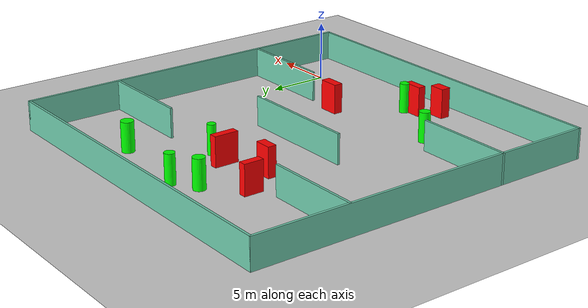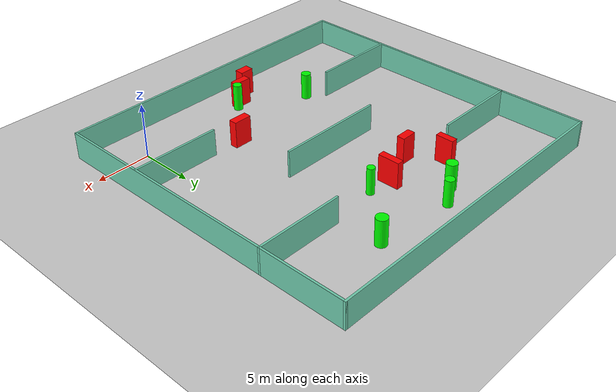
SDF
<sdf version="1.7">
 <world name="default">
  <light name="sun" type="directional">
   <pose>0 0 10 0 -0 0</pose>
   <diffuse>0.8 0.8 0.8 1</diffuse>
   <specular>0.2 0.2 0.2 1</specular>
   <attenuation>
    <range>1000</range>
    <constant>0.9</constant>
    <linear>0.01</linear>
    <quadratic>0.001</quadratic>
   </attenuation>
   <direction>-0.5 0.1 -0.9</direction>
   <spot><inner_angle>0</inner_angle><outer_angle>0</outer_angle><falloff>0</falloff></spot>
  </light>
  <model name="ground_plane">
   <static>1</static>
   <link name="link">
    <collision name="collision">
     <geometry><plane><normal>0 0 1</normal><size>100 100</size></plane></geometry>
     <surface>
      <contact><collide_bitmask>65535</collide_bitmask></contact>
      <friction><ode><mu>100</mu><mu2>50</mu2></ode></friction>
     </surface>
    </collision>
    <visual name="visual">
     <cast_shadows>0</cast_shadows>
     <geometry><plane><normal>0 0 1</normal><size>100 100</size></plane></geometry>
     <material>
      <script><uri>file://media/materials/scripts/gazebo.material</uri><name>Gazebo/Grey</name></script>
     </material>
    </visual>
   </link>
  </model>
  <gravity>0 0 -9.8</gravity>
  <magnetic_field>6e-06 2.3e-05 -4.2e-05</magnetic_field>
  <atmosphere type="adiabatic"/>
  <physics type="ode">
   <max_step_size>0.001</max_step_size>
   <real_time_factor>1</real_time_factor>
   <real_time_update_rate>1000</real_time_update_rate>
  </physics>
  <scene><ambient>0.4 0.4 0.4 1</ambient><background>0.7 0.7 0.7 1</background><shadows>1</shadows></scene>
  <spherical_coordinates>
   <surface_model>EARTH_WGS84</surface_model>
   <latitude_deg>0</latitude_deg>
   <longitude_deg>0</longitude_deg>
   <elevation>0</elevation>
   <heading_deg>0</heading_deg>
  </spherical_coordinates>
  <model name="my_base_walls">
   <link name="Wall_10">
    <collision name="Wall_10_Collision">
     <geometry><box><size>8.2 0.2 2.5</size></box></geometry>
     <pose>0 0 1.25 0 -0 0</pose>
    </collision>
    <visual name="Wall_10_Visual">
     <pose>0 0 1.25 0 -0 0</pose>
     <geometry><box><size>8.2 0.2 2.5</size></box></geometry>
     <material>
      <script><uri>file://media/materials/scripts/gazebo.material</uri><name>Gazebo/Grey</name></script>
      <ambient>0.435294 0.796078 0.67451 1</ambient>
     </material>
     <meta><layer>0</layer></meta>
    </visual>
    <pose>-11 -7 0 0 -0 0</pose>
   </link>
   <link name="Wall_12">
    <collision name="Wall_12_Collision">
     <geometry><box><size>8.2 0.2 2.5</size></box></geometry>
     <pose>0 0 1.25 0 -0 0</pose>
    </collision>
    <visual name="Wall_12_Visual">
     <pose>0 0 1.25 0 -0 0</pose>
     <geometry><box><size>8.2 0.2 2.5</size></box></geometry>
     <material>
      <script><uri>file://media/materials/scripts/gazebo.material</uri><name>Gazebo/Grey</name></script>
      <ambient>0.435294 0.796078 0.67451 1</ambient>
     </material>
     <meta><layer>0</layer></meta>
    </visual>
    <pose>-11 7 0 0 -0 0</pose>
   </link>
   <link name="Wall_14">
    <collision name="Wall_14_Collision">
     <geometry><box><size>8.2 0.2 2.5</size></box></geometry>
     <pose>0 0 1.25 0 -0 0</pose>
    </collision>
    <visual name="Wall_14_Visual">
     <pose>0 0 1.25 0 -0 0</pose>
     <geometry><box><size>8.2 0.2 2.5</size></box></geometry>
     <material>
      <script><uri>file://media/materials/scripts/gazebo.material</uri><name>Gazebo/Grey</name></script>
      <ambient>0.435294 0.796078 0.67451 1</ambient>
     </material>
     <meta><layer>0</layer></meta>
    </visual>
    <pose>11 7 0 0 -0 3.14159</pose>
   </link>
   <link name="Wall_16">
    <collision name="Wall_16_Collision">
     <geometry><box><size>10.2 0.2 2.5</size></box></geometry>
     <pose>0 0 1.25 0 -0 0</pose>
    </collision>
    <visual name="Wall_16_Visual">
     <pose>0 0 1.25 0 -0 0</pose>
     <geometry><box><size>10.2 0.2 2.5</size></box></geometry>
     <material>
      <script><uri>file://media/materials/scripts/gazebo.material</uri><name>Gazebo/Grey</name></script>
      <ambient>0.435294 0.796078 0.67451 1</ambient>
     </material>
     <meta><layer>0</layer></meta>
    </visual>
    <pose>0 0 0 0 -0 3.14159</pose>
   </link>
   <link name="Wall_2">
    <collision name="Wall_2_Collision">
     <geometry><box><size>30.2 0.2 2.5</size></box></geometry>
     <pose>0 0 1.25 0 -0 0</pose>
    </collision>
    <visual name="Wall_2_Visual">
     <pose>0 0 1.25 0 -0 0</pose>
     <geometry><box><size>30.2 0.2 2.5</size></box></geometry>
     <material>
      <script><uri>file://media/materials/scripts/gazebo.material</uri><name>Gazebo/Grey</name></script>
      <ambient>0.435294 0.796078 0.67451 1</ambient>
     </material>
     <meta><layer>0</layer></meta>
    </visual>
    <pose>0 -15 0 0 -0 3.14159</pose>
   </link>
   <link name="Wall_3">
    <collision name="Wall_3_Collision">
     <geometry><box><size>30.2 0.2 2.5</size></box></geometry>
     <pose>0 0 1.25 0 -0 0</pose>
    </collision>
    <visual name="Wall_3_Visual">
     <pose>0 0 1.25 0 -0 0</pose>
     <geometry><box><size>30.2 0.2 2.5</size></box></geometry>
     <material>
      <script><uri>file://media/materials/scripts/gazebo.material</uri><name>Gazebo/Grey</name></script>
      <ambient>0.435294 0.796078 0.67451 1</ambient>
     </material>
     <meta><layer>0</layer></meta>
    </visual>
    <pose>-15 0 0 0 -0 1.5708</pose>
   </link>
   <link name="Wall_4">
    <collision name="Wall_4_Collision">
     <geometry><box><size>30.2 0.2 2.5</size></box></geometry>
     <pose>0 0 1.25 0 -0 0</pose>
    </collision>
    <visual name="Wall_4_Visual">
     <pose>0 0 1.25 0 -0 0</pose>
     <geometry><box><size>30.2 0.2 2.5</size></box></geometry>
     <material>
      <script><uri>file://media/materials/scripts/gazebo.material</uri><name>Gazebo/Grey</name></script>
      <ambient>0.435294 0.796078 0.67451 1</ambient>
     </material>
     <meta><layer>0</layer></meta>
    </visual>
    <pose>0 15 0 0 -0 0</pose>
   </link>
   <link name="Wall_6">
    <collision name="Wall_6_Collision">
     <geometry><box><size>30.2 0.2 2.5</size></box></geometry>
     <pose>0 0 1.25 0 -0 0</pose>
    </collision>
    <visual name="Wall_6_Visual">
     <pose>0 0 1.25 0 -0 0</pose>
     <geometry><box><size>30.2 0.2 2.5</size></box></geometry>
     <material>
      <script><uri>file://media/materials/scripts/gazebo.material</uri><name>Gazebo/Grey</name></script>
      <ambient>0.435294 0.796078 0.67451 1</ambient>
     </material>
     <meta><layer>0</layer></meta>
    </visual>
    <pose>15 0 0 0 -0 1.5708</pose>
   </link>
   <link name="Wall_8">
    <collision name="Wall_8_Collision">
     <geometry><box><size>8.2 0.2 2.5</size></box></geometry>
     <pose>0 0 1.25 0 -0 0</pose>
    </collision>
    <visual name="Wall_8_Visual">
     <pose>0 0 1.25 0 -0 0</pose>
     <geometry><box><size>8.2 0.2 2.5</size></box></geometry>
     <material>
      <script><uri>file://media/materials/scripts/gazebo.material</uri><name>Gazebo/Grey</name></script>
      <ambient>0.435294 0.796078 0.67451 1</ambient>
     </material>
     <meta><layer>0</layer></meta>
    </visual>
    <pose>11 -7 0 0 -0 3.14159</pose>
   </link>
   <static>1</static>
   <pose>-11 11 0 0 -0 0</pose>
  </model>
  <model name="cylinder1">
   <static>1</static>
   <link name="link">
    <inertial>
     <mass>1</mass>
     <inertia><ixx>0.5</ixx><ixy>0</ixy><ixz>0</ixz><iyy>0.5</iyy><iyz>0</iyz><izz>1</izz></inertia>
    </inertial>
    <collision name="collision">
     <geometry><cylinder><radius>0.523964909744281</radius><length>2.5</length></cylinder></geometry>
    </collision>
    <visual name="visual">
     <geometry><cylinder><radius>0.523964909744281</radius><length>2.5</length></cylinder></geometry>
     <material>
      <ambient>0 1 0 1</ambient>
      <diffuse>0 1 0 1</diffuse>
      <specular>0.1 0.1 0.1 1</specular>
      <emissive>0 0 0 0</emissive>
     </material>
    </visual>
   </link>
   <pose>-4.345066337228124 22.087739551888927 1.25 0 0 0</pose>
  </model>
  <model name="cylinder2">
   <static>1</static>
   <link name="link">
    <inertial>
     <mass>1</mass>
     <inertia><ixx>0.5</ixx><ixy>0</ixy><ixz>0</ixz><iyy>0.5</iyy><iyz>0</iyz><izz>1</izz></inertia>
    </inertial>
    <collision name="collision">
     <geometry><cylinder><radius>0.40746088001975195</radius><length>2.5</length></cylinder></geometry>
    </collision>
    <visual name="visual">
     <geometry><cylinder><radius>0.40746088001975195</radius><length>2.5</length></cylinder></geometry>
     <material>
      <ambient>0 1 0 1</ambient>
      <diffuse>0 1 0 1</diffuse>
      <specular>0.1 0.1 0.1 1</specular>
      <emissive>0 0 0 0</emissive>
     </material>
    </visual>
   </link>
   <pose>-10.670797993455295 -0.2949072576692937 1.25 0 0 0</pose>
  </model>
  <model name="cylinder3">
   <static>1</static>
   <link name="link">
    <inertial>
     <mass>1</mass>
     <inertia><ixx>0.5</ixx><ixy>0</ixy><ixz>0</ixz><iyy>0.5</iyy><iyz>0</iyz><izz>1</izz></inertia>
    </inertial>
    <collision name="collision">
     <geometry><cylinder><radius>0.5016828107849446</radius><length>2.5</length></cylinder></geometry>
    </collision>
    <visual name="visual">
     <geometry><cylinder><radius>0.5016828107849446</radius><length>2.5</length></cylinder></geometry>
     <material>
      <ambient>0 1 0 1</ambient>
      <diffuse>0 1 0 1</diffuse>
      <specular>0.1 0.1 0.1 1</specular>
      <emissive>0 0 0 0</emissive>
     </material>
    </visual>
   </link>
   <pose>-13.532171006770582 21.64949486180529 1.25 0 0 0</pose>
  </model>
  <model name="cylinder4">
   <static>1</static>
   <link name="link">
    <inertial>
     <mass>1</mass>
     <inertia><ixx>0.5</ixx><ixy>0</ixy><ixz>0</ixz><iyy>0.5</iyy><iyz>0</iyz><izz>1</izz></inertia>
    </inertial>
    <collision name="collision">
     <geometry><cylinder><radius>0.42058148459460476</radius><length>2.5</length></cylinder></geometry>
    </collision>
    <visual name="visual">
     <geometry><cylinder><radius>0.42058148459460476</radius><length>2.5</length></cylinder></geometry>
     <material>
      <ambient>0 1 0 1</ambient>
      <diffuse>0 1 0 1</diffuse>
      <specular>0.1 0.1 0.1 1</specular>
      <emissive>0 0 0 0</emissive>
     </material>
    </visual>
   </link>
   <pose>-11.579490042091088 22.85532114010502 1.25 0 0 0</pose>
  </model>
  <model name="cylinder5">
   <static>1</static>
   <link name="link">
    <inertial>
     <mass>1</mass>
     <inertia><ixx>0.5</ixx><ixy>0</ixy><ixz>0</ixz><iyy>0.5</iyy><iyz>0</iyz><izz>1</izz></inertia>
    </inertial>
    <collision name="collision">
     <geometry><cylinder><radius>0.35412663451091236</radius><length>2.5</length></cylinder></geometry>
    </collision>
    <visual name="visual">
     <geometry><cylinder><radius>0.35412663451091236</radius><length>2.5</length></cylinder></geometry>
     <material>
      <ambient>0 1 0 1</ambient>
      <diffuse>0 1 0 1</diffuse>
      <specular>0.1 0.1 0.1 1</specular>
      <emissive>0 0 0 0</emissive>
     </material>
    </visual>
   </link>
   <pose>-8.701053381484797 17.341012821369457 1.25 0 0 0</pose>
  </model>
  <model name="cylinder6">
   <static>1</static>
   <link name="link">
    <inertial>
     <mass>1</mass>
     <inertia><ixx>0.5</ixx><ixy>0</ixy><ixz>0</ixz><iyy>0.5</iyy><iyz>0</iyz><izz>1</izz></inertia>
    </inertial>
    <collision name="collision">
     <geometry><cylinder><radius>0.45035508105345756</radius><length>2.5</length></cylinder></geometry>
    </collision>
    <visual name="visual">
     <geometry><cylinder><radius>0.45035508105345756</radius><length>2.5</length></cylinder></geometry>
     <material>
      <ambient>0 1 0 1</ambient>
      <diffuse>0 1 0 1</diffuse>
      <specular>0.1 0.1 0.1 1</specular>
      <emissive>0 0 0 0</emissive>
     </material>
    </visual>
   </link>
   <pose>-16.477883733938057 2.802680849434868 1.25 0 0 0</pose>
  </model>
  <model name="box1">
   <static>1</static>
   <link name="link">
    <inertial>
     <mass>1</mass>
     <inertia><ixx>0.083</ixx><ixy>0</ixy><ixz>0</ixz><iyy>0.083</iyy><iyz>0</iyz><izz>0.083</izz></inertia>
    </inertial>
    <collision name="collision">
     <geometry><box><size>0.6151274941334235 1.6450472218095755 2.5</size></box></geometry>
    </collision>
    <visual name="visual">
     <geometry><box><size>0.6151274941334235 1.6450472218095755 2.5</size></box></geometry>
     <material>
      <ambient>1 0 0 1</ambient>
      <diffuse>1 0 0 1</diffuse>
      <specular>0.1 0.1 0.1 1</specular>
      <emissive>0 0 0 0</emissive>
     </material>
    </visual>
    <sensor name="my_contact" type="contact">
     <contact><collision>box_collision</collision><topic>__default_topic__</topic></contact>
    </sensor>
   </link>
   <pose>-16.32164320956423 19.05526247263465 1.25 0 0 0</pose>
  </model>
  <model name="box2">
   <static>1</static>
   <link name="link">
    <inertial>
     <mass>1</mass>
     <inertia><ixx>0.083</ixx><ixy>0</ixy><ixz>0</ixz><iyy>0.083</iyy><iyz>0</iyz><izz>0.083</izz></inertia>
    </inertial>
    <collision name="collision">
     <geometry><box><size>1.318538353842117 0.8295626879744051 2.5</size></box></geometry>
    </collision>
    <visual name="visual">
     <geometry><box><size>1.318538353842117 0.8295626879744051 2.5</size></box></geometry>
     <material>
      <ambient>1 0 0 1</ambient>
      <diffuse>1 0 0 1</diffuse>
      <specular>0.1 0.1 0.1 1</specular>
      <emissive>0 0 0 0</emissive>
     </material>
    </visual>
    <sensor name="my_contact" type="contact">
     <contact><collision>box_collision</collision><topic>__default_topic__</topic></contact>
    </sensor>
   </link>
   <pose>-13.084097721376176 -2.0012033968151797 1.25 0 0 0</pose>
  </model>
  <model name="box3">
   <static>1</static>
   <link name="link">
    <inertial>
     <mass>1</mass>
     <inertia><ixx>0.083</ixx><ixy>0</ixy><ixz>0</ixz><iyy>0.083</iyy><iyz>0</iyz><izz>0.083</izz></inertia>
    </inertial>
    <collision name="collision">
     <geometry><box><size>1.4351061309494262 0.7257917765047861 2.5</size></box></geometry>
    </collision>
    <visual name="visual">
     <geometry><box><size>1.4351061309494262 0.7257917765047861 2.5</size></box></geometry>
     <material>
      <ambient>1 0 0 1</ambient>
      <diffuse>1 0 0 1</diffuse>
      <specular>0.1 0.1 0.1 1</specular>
      <emissive>0 0 0 0</emissive>
     </material>
    </visual>
    <sensor name="my_contact" type="contact">
     <contact><collision>box_collision</collision><topic>__default_topic__</topic></contact>
    </sensor>
   </link>
   <pose>-14.367838584567032 16.343461863856728 1.25 0 0 0</pose>
  </model>
  <model name="box4">
   <static>1</static>
   <link name="link">
    <inertial>
     <mass>1</mass>
     <inertia><ixx>0.083</ixx><ixy>0</ixy><ixz>0</ixz><iyy>0.083</iyy><iyz>0</iyz><izz>0.083</izz></inertia>
    </inertial>
    <collision name="collision">
     <geometry><box><size>1.7026842591531135 0.7506209059895104 2.5</size></box></geometry>
    </collision>
    <visual name="visual">
     <geometry><box><size>1.7026842591531135 0.7506209059895104 2.5</size></box></geometry>
     <material>
      <ambient>1 0 0 1</ambient>
      <diffuse>1 0 0 1</diffuse>
      <specular>0.1 0.1 0.1 1</specular>
      <emissive>0 0 0 0</emissive>
     </material>
    </visual>
    <sensor name="my_contact" type="contact">
     <contact><collision>box_collision</collision><topic>__default_topic__</topic></contact>
    </sensor>
   </link>
   <pose>-6.824131406380108 4.248654543765916 1.25 0 0 0</pose>
  </model>
  <model name="box5">
   <static>1</static>
   <link name="link">
    <inertial>
     <mass>1</mass>
     <inertia><ixx>0.083</ixx><ixy>0</ixy><ixz>0</ixz><iyy>0.083</iyy><iyz>0</iyz><izz>0.083</izz></inertia>
    </inertial>
    <collision name="collision">
     <geometry><box><size>1.6805438113775488 0.659989503798478 2.5</size></box></geometry>
    </collision>
    <visual name="visual">
     <geometry><box><size>1.6805438113775488 0.659989503798478 2.5</size></box></geometry>
     <material>
      <ambient>1 0 0 1</ambient>
      <diffuse>1 0 0 1</diffuse>
      <specular>0.1 0.1 0.1 1</specular>
      <emissive>0 0 0 0</emissive>
     </material>
    </visual>
    <sensor name="my_contact" type="contact">
     <contact><collision>box_collision</collision><topic>__default_topic__</topic></contact>
    </sensor>
   </link>
   <pose>-11.431746102621902 -0.7354711882771956 1.25 0 0 0</pose>
  </model>
  <model name="box6">
   <static>1</static>
   <link name="link">
    <inertial>
     <mass>1</mass>
     <inertia><ixx>0.083</ixx><ixy>0</ixy><ixz>0</ixz><iyy>0.083</iyy><iyz>0</iyz><izz>0.083</izz></inertia>
    </inertial>
    <collision name="collision">
     <geometry><box><size>0.6283654565762312 2.0418340714203733 2.5</size></box></geometry>
    </collision>
    <visual name="visual">
     <geometry><box><size>0.6283654565762312 2.0418340714203733 2.5</size></box></geometry>
     <material>
      <ambient>1 0 0 1</ambient>
      <diffuse>1 0 0 1</diffuse>
      <specular>0.1 0.1 0.1 1</specular>
      <emissive>0 0 0 0</emissive>
     </material>
    </visual>
    <sensor name="my_contact" type="contact">
     <contact><collision>box_collision</collision><topic>__default_topic__</topic></contact>
    </sensor>
   </link>
   <pose>-10.812627682896636 17.62129387206255 1.25 0 0 0</pose>
  </model>
 </world>
</sdf>
